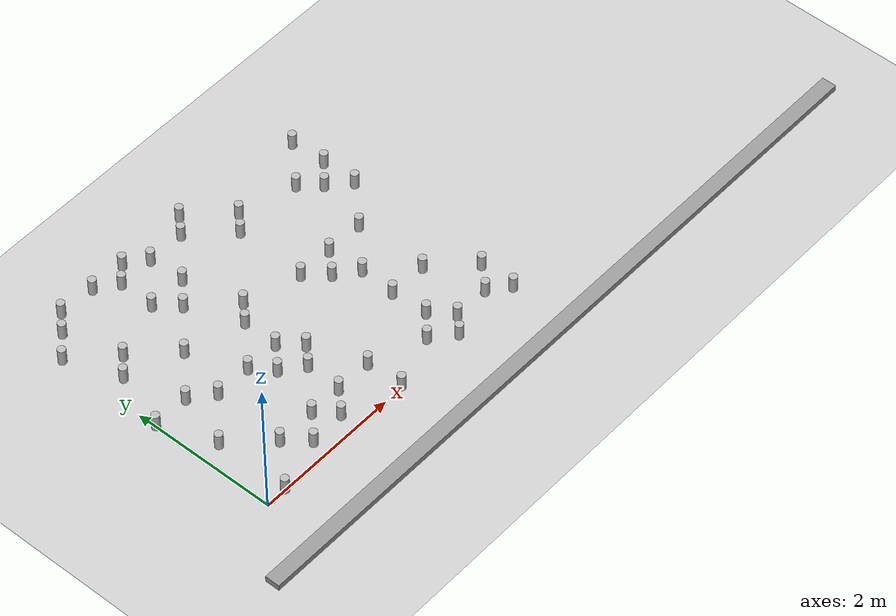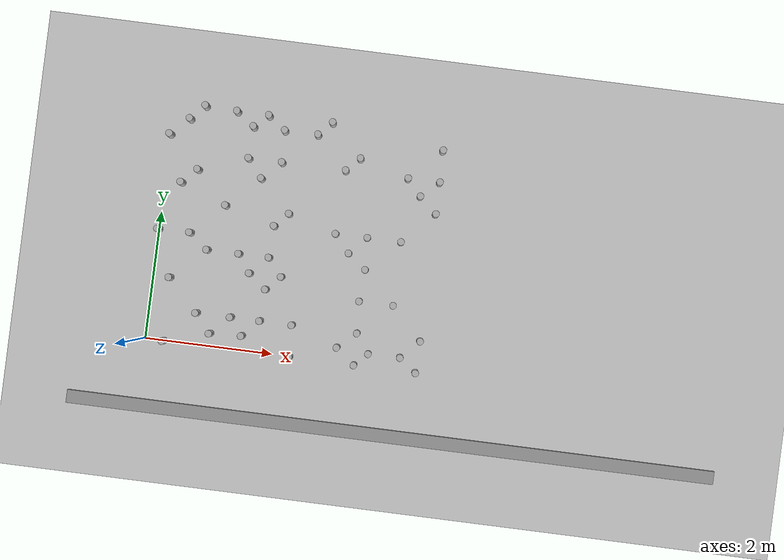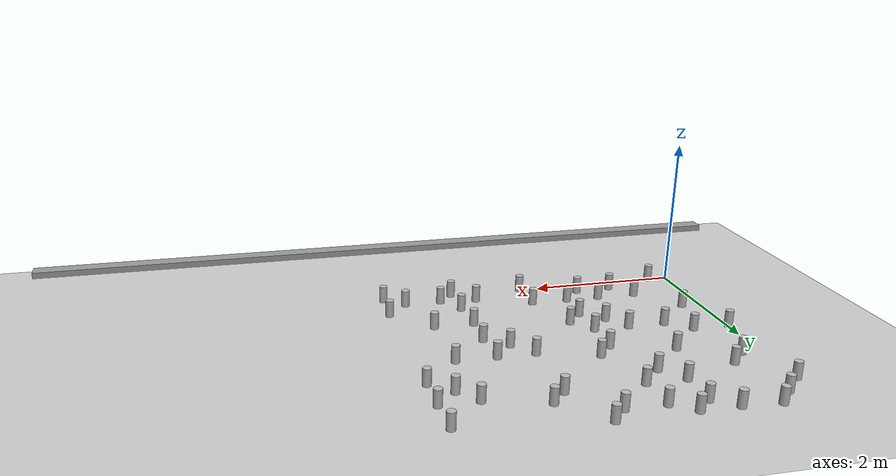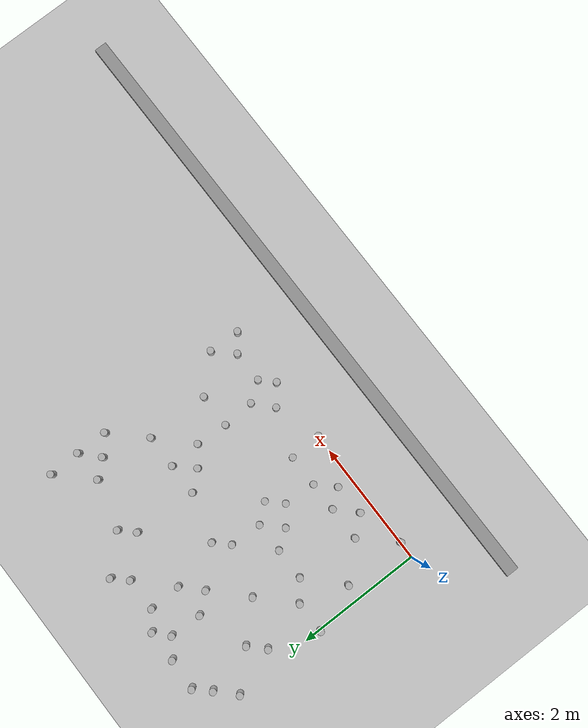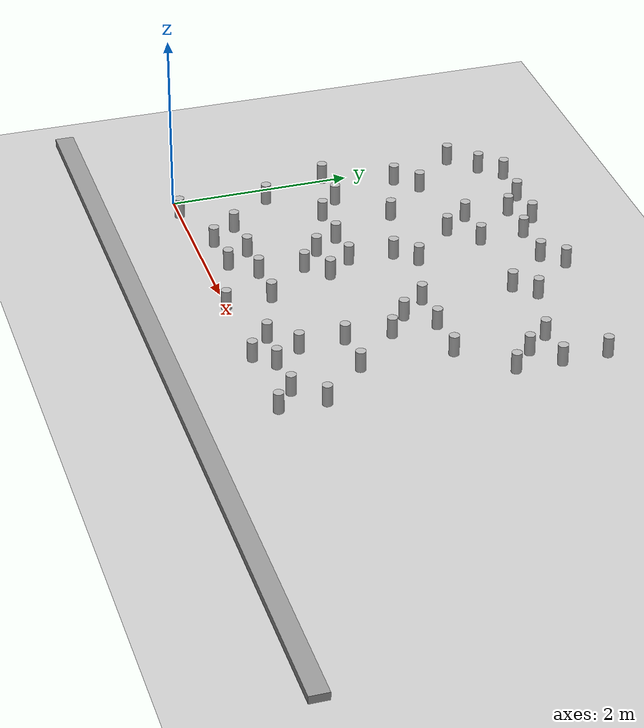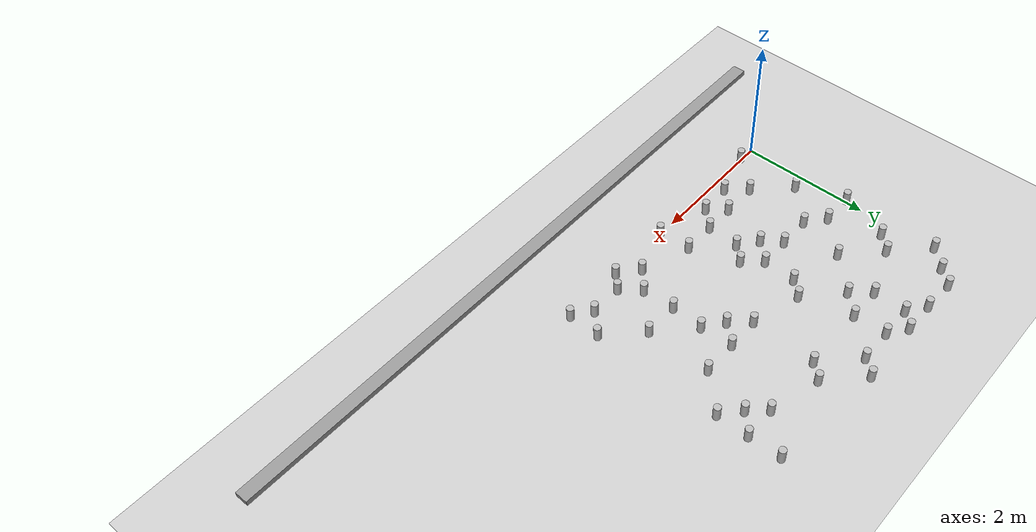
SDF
<sdf version="1.6">
 <world name="default">
  <model name="ground_plane">
   <static>1</static>
   <link name="link">
    <collision name="collision">
     <geometry><plane><normal>0 0 1</normal><size>100 100</size></plane></geometry>
     <surface><friction><ode><mu>100</mu><mu2>50</mu2></ode></friction></surface>
    </collision>
    <visual name="visual">
     <cast_shadows>0</cast_shadows>
     <geometry><plane><normal>0 0 1</normal><size>100 100</size></plane></geometry>
     <material>
      <script><uri>file://media/materials/scripts/gazebo.material</uri><name>Gazebo/Grey</name></script>
     </material>
    </visual>
   </link>
  </model>
  <model name="wall4">
   <static>1</static>
   <link name="link">
    <pose>0 0 0.42 0 -0 0</pose>
    <collision name="collision"><geometry><box><size>10 0.2 0.084</size></box></geometry></collision>
    <visual name="visual">
     <cast_shadows>0</cast_shadows>
     <geometry><box><size>10 0.2 0.084</size></box></geometry>
     <material>
      <script>
       <uri>model://grey_wall/materials/scripts</uri>
       <uri>model://grey_wall/materials/textures</uri>
       <name>vrc/grey_wall</name>
      </script>
     </material>
    </visual>
   </link>
   <pose>4.0 -1 0 0 -0 0</pose>
  </model>
  <model name="can3.258957673971.0">
   <link name="link">
    <pose>0 0 0.115 0 -0 0</pose>
    <inertial>
     <mass>0.39</mass>
     <inertia><ixx>0.00058</ixx><ixy>0</ixy><ixz>0</ixz><iyy>0.00058</iyy><iyz>0</iyz><izz>0.00019</izz></inertia>
    </inertial>
    <collision name="collision">
     <geometry><cylinder><radius>0.055</radius><length>0.23</length></cylinder></geometry>
    </collision>
    <visual name="visual">
     <geometry><cylinder><radius>0.055</radius><length>0.23</length></cylinder></geometry>
     <material>
      <script>
       <uri>model://beer/materials/scripts</uri>
       <uri>model://beer/materials/textures</uri>
       <name>Beer/Diffuse</name>
      </script>
     </material>
    </visual>
   </link>
   <pose>3.25895767397 1.0 -2e-06 1e-06 0 -9.5e-05</pose>
  </model>
  <model name="can1.782080667241.0">
   <link name="link">
    <pose>0 0 0.115 0 -0 0</pose>
    <inertial>
     <mass>0.39</mass>
     <inertia><ixx>0.00058</ixx><ixy>0</ixy><ixz>0</ixz><iyy>0.00058</iyy><iyz>0</iyz><izz>0.00019</izz></inertia>
    </inertial>
    <collision name="collision">
     <geometry><cylinder><radius>0.055</radius><length>0.23</length></cylinder></geometry>
    </collision>
    <visual name="visual">
     <geometry><cylinder><radius>0.055</radius><length>0.23</length></cylinder></geometry>
     <material>
      <script>
       <uri>model://beer/materials/scripts</uri>
       <uri>model://beer/materials/textures</uri>
       <name>Beer/Diffuse</name>
      </script>
     </material>
    </visual>
   </link>
   <pose>1.78208066724 1.0 -2e-06 1e-06 0 -9.5e-05</pose>
  </model>
  <model name="can1.00.207146952871">
   <link name="link">
    <pose>0 0 0.115 0 -0 0</pose>
    <inertial>
     <mass>0.39</mass>
     <inertia><ixx>0.00058</ixx><ixy>0</ixy><ixz>0</ixz><iyy>0.00058</iyy><iyz>0</iyz><izz>0.00019</izz></inertia>
    </inertial>
    <collision name="collision">
     <geometry><cylinder><radius>0.055</radius><length>0.23</length></cylinder></geometry>
    </collision>
    <visual name="visual">
     <geometry><cylinder><radius>0.055</radius><length>0.23</length></cylinder></geometry>
     <material>
      <script>
       <uri>model://beer/materials/scripts</uri>
       <uri>model://beer/materials/textures</uri>
       <name>Beer/Diffuse</name>
      </script>
     </material>
    </visual>
   </link>
   <pose>1.0 0.207146952871 -2e-06 1e-06 0 -9.5e-05</pose>
  </model>
  <model name="can1.03.7041113807">
   <link name="link">
    <pose>0 0 0.115 0 -0 0</pose>
    <inertial>
     <mass>0.39</mass>
     <inertia><ixx>0.00058</ixx><ixy>0</ixy><ixz>0</ixz><iyy>0.00058</iyy><iyz>0</iyz><izz>0.00019</izz></inertia>
    </inertial>
    <collision name="collision">
     <geometry><cylinder><radius>0.055</radius><length>0.23</length></cylinder></geometry>
    </collision>
    <visual name="visual">
     <geometry><cylinder><radius>0.055</radius><length>0.23</length></cylinder></geometry>
     <material>
      <script>
       <uri>model://beer/materials/scripts</uri>
       <uri>model://beer/materials/textures</uri>
       <name>Beer/Diffuse</name>
      </script>
     </material>
    </visual>
   </link>
   <pose>1.0 3.7041113807 -2e-06 1e-06 0 -9.5e-05</pose>
  </model>
  <model name="can1.51.21977305857">
   <link name="link">
    <pose>0 0 0.115 0 -0 0</pose>
    <inertial>
     <mass>0.39</mass>
     <inertia><ixx>0.00058</ixx><ixy>0</ixy><ixz>0</ixz><iyy>0.00058</iyy><iyz>0</iyz><izz>0.00019</izz></inertia>
    </inertial>
    <collision name="collision">
     <geometry><cylinder><radius>0.055</radius><length>0.23</length></cylinder></geometry>
    </collision>
    <visual name="visual">
     <geometry><cylinder><radius>0.055</radius><length>0.23</length></cylinder></geometry>
     <material>
      <script>
       <uri>model://beer/materials/scripts</uri>
       <uri>model://beer/materials/textures</uri>
       <name>Beer/Diffuse</name>
      </script>
     </material>
    </visual>
   </link>
   <pose>1.5 1.21977305857 -2e-06 1e-06 0 -9.5e-05</pose>
  </model>
  <model name="can4.02.74444031951">
   <link name="link">
    <pose>0 0 0.115 0 -0 0</pose>
    <inertial>
     <mass>0.39</mass>
     <inertia><ixx>0.00058</ixx><ixy>0</ixy><ixz>0</ixz><iyy>0.00058</iyy><iyz>0</iyz><izz>0.00019</izz></inertia>
    </inertial>
    <collision name="collision">
     <geometry><cylinder><radius>0.055</radius><length>0.23</length></cylinder></geometry>
    </collision>
    <visual name="visual">
     <geometry><cylinder><radius>0.055</radius><length>0.23</length></cylinder></geometry>
     <material>
      <script>
       <uri>model://beer/materials/scripts</uri>
       <uri>model://beer/materials/textures</uri>
       <name>Beer/Diffuse</name>
      </script>
     </material>
    </visual>
   </link>
   <pose>4.0 2.74444031951 -2e-06 1e-06 0 -9.5e-05</pose>
  </model>
  <model name="can1.772515468821.5">
   <link name="link">
    <pose>0 0 0.115 0 -0 0</pose>
    <inertial>
     <mass>0.39</mass>
     <inertia><ixx>0.00058</ixx><ixy>0</ixy><ixz>0</ixz><iyy>0.00058</iyy><iyz>0</iyz><izz>0.00019</izz></inertia>
    </inertial>
    <collision name="collision">
     <geometry><cylinder><radius>0.055</radius><length>0.23</length></cylinder></geometry>
    </collision>
    <visual name="visual">
     <geometry><cylinder><radius>0.055</radius><length>0.23</length></cylinder></geometry>
     <material>
      <script>
       <uri>model://beer/materials/scripts</uri>
       <uri>model://beer/materials/textures</uri>
       <name>Beer/Diffuse</name>
      </script>
     </material>
    </visual>
   </link>
   <pose>1.77251546882 1.5 -2e-06 1e-06 0 -9.5e-05</pose>
  </model>
  <model name="can4.281534310790.5">
   <link name="link">
    <pose>0 0 0.115 0 -0 0</pose>
    <inertial>
     <mass>0.39</mass>
     <inertia><ixx>0.00058</ixx><ixy>0</ixy><ixz>0</ixz><iyy>0.00058</iyy><iyz>0</iyz><izz>0.00019</izz></inertia>
    </inertial>
    <collision name="collision">
     <geometry><cylinder><radius>0.055</radius><length>0.23</length></cylinder></geometry>
    </collision>
    <visual name="visual">
     <geometry><cylinder><radius>0.055</radius><length>0.23</length></cylinder></geometry>
     <material>
      <script>
       <uri>model://beer/materials/scripts</uri>
       <uri>model://beer/materials/textures</uri>
       <name>Beer/Diffuse</name>
      </script>
     </material>
    </visual>
   </link>
   <pose>4.28153431079 0.5 -2e-06 1e-06 0 -9.5e-05</pose>
  </model>
  <model name="can1.292283602720.5">
   <link name="link">
    <pose>0 0 0.115 0 -0 0</pose>
    <inertial>
     <mass>0.39</mass>
     <inertia><ixx>0.00058</ixx><ixy>0</ixy><ixz>0</ixz><iyy>0.00058</iyy><iyz>0</iyz><izz>0.00019</izz></inertia>
    </inertial>
    <collision name="collision">
     <geometry><cylinder><radius>0.055</radius><length>0.23</length></cylinder></geometry>
    </collision>
    <visual name="visual">
     <geometry><cylinder><radius>0.055</radius><length>0.23</length></cylinder></geometry>
     <material>
      <script>
       <uri>model://beer/materials/scripts</uri>
       <uri>model://beer/materials/textures</uri>
       <name>Beer/Diffuse</name>
      </script>
     </material>
    </visual>
   </link>
   <pose>1.29228360272 0.5 -2e-06 1e-06 0 -9.5e-05</pose>
  </model>
  <model name="can4.267930622410.0">
   <link name="link">
    <pose>0 0 0.115 0 -0 0</pose>
    <inertial>
     <mass>0.39</mass>
     <inertia><ixx>0.00058</ixx><ixy>0</ixy><ixz>0</ixz><iyy>0.00058</iyy><iyz>0</iyz><izz>0.00019</izz></inertia>
    </inertial>
    <collision name="collision">
     <geometry><cylinder><radius>0.055</radius><length>0.23</length></cylinder></geometry>
    </collision>
    <visual name="visual">
     <geometry><cylinder><radius>0.055</radius><length>0.23</length></cylinder></geometry>
     <material>
      <script>
       <uri>model://beer/materials/scripts</uri>
       <uri>model://beer/materials/textures</uri>
       <name>Beer/Diffuse</name>
      </script>
     </material>
    </visual>
   </link>
   <pose>4.26793062241 0.0 -2e-06 1e-06 0 -9.5e-05</pose>
  </model>
  <model name="can0.270246613111.0">
   <link name="link">
    <pose>0 0 0.115 0 -0 0</pose>
    <inertial>
     <mass>0.39</mass>
     <inertia><ixx>0.00058</ixx><ixy>0</ixy><ixz>0</ixz><iyy>0.00058</iyy><iyz>0</iyz><izz>0.00019</izz></inertia>
    </inertial>
    <collision name="collision">
     <geometry><cylinder><radius>0.055</radius><length>0.23</length></cylinder></geometry>
    </collision>
    <visual name="visual">
     <geometry><cylinder><radius>0.055</radius><length>0.23</length></cylinder></geometry>
     <material>
      <script>
       <uri>model://beer/materials/scripts</uri>
       <uri>model://beer/materials/textures</uri>
       <name>Beer/Diffuse</name>
      </script>
     </material>
    </visual>
   </link>
   <pose>0.27024661311 1.0 -2e-06 1e-06 0 -9.5e-05</pose>
  </model>
  <model name="can3.789780478522.0">
   <link name="link">
    <pose>0 0 0.115 0 -0 0</pose>
    <inertial>
     <mass>0.39</mass>
     <inertia><ixx>0.00058</ixx><ixy>0</ixy><ixz>0</ixz><iyy>0.00058</iyy><iyz>0</iyz><izz>0.00019</izz></inertia>
    </inertial>
    <collision name="collision">
     <geometry><cylinder><radius>0.055</radius><length>0.23</length></cylinder></geometry>
    </collision>
    <visual name="visual">
     <geometry><cylinder><radius>0.055</radius><length>0.23</length></cylinder></geometry>
     <material>
      <script>
       <uri>model://beer/materials/scripts</uri>
       <uri>model://beer/materials/textures</uri>
       <name>Beer/Diffuse</name>
      </script>
     </material>
    </visual>
   </link>
   <pose>3.78978047852 2.0 -2e-06 1e-06 0 -9.5e-05</pose>
  </model>
  <model name="can3.50.201019531906">
   <link name="link">
    <pose>0 0 0.115 0 -0 0</pose>
    <inertial>
     <mass>0.39</mass>
     <inertia><ixx>0.00058</ixx><ixy>0</ixy><ixz>0</ixz><iyy>0.00058</iyy><iyz>0</iyz><izz>0.00019</izz></inertia>
    </inertial>
    <collision name="collision">
     <geometry><cylinder><radius>0.055</radius><length>0.23</length></cylinder></geometry>
    </collision>
    <visual name="visual">
     <geometry><cylinder><radius>0.055</radius><length>0.23</length></cylinder></geometry>
     <material>
      <script>
       <uri>model://beer/materials/scripts</uri>
       <uri>model://beer/materials/textures</uri>
       <name>Beer/Diffuse</name>
      </script>
     </material>
    </visual>
   </link>
   <pose>3.5 0.201019531906 -2e-06 1e-06 0 -9.5e-05</pose>
  </model>
  <model name="can4.273143605972.5">
   <link name="link">
    <pose>0 0 0.115 0 -0 0</pose>
    <inertial>
     <mass>0.39</mass>
     <inertia><ixx>0.00058</ixx><ixy>0</ixy><ixz>0</ixz><iyy>0.00058</iyy><iyz>0</iyz><izz>0.00019</izz></inertia>
    </inertial>
    <collision name="collision">
     <geometry><cylinder><radius>0.055</radius><length>0.23</length></cylinder></geometry>
    </collision>
    <visual name="visual">
     <geometry><cylinder><radius>0.055</radius><length>0.23</length></cylinder></geometry>
     <material>
      <script>
       <uri>model://beer/materials/scripts</uri>
       <uri>model://beer/materials/textures</uri>
       <name>Beer/Diffuse</name>
      </script>
     </material>
    </visual>
   </link>
   <pose>4.27314360597 2.5 -2e-06 1e-06 0 -9.5e-05</pose>
  </model>
  <model name="can2.759607361732.0">
   <link name="link">
    <pose>0 0 0.115 0 -0 0</pose>
    <inertial>
     <mass>0.39</mass>
     <inertia><ixx>0.00058</ixx><ixy>0</ixy><ixz>0</ixz><iyy>0.00058</iyy><iyz>0</iyz><izz>0.00019</izz></inertia>
    </inertial>
    <collision name="collision">
     <geometry><cylinder><radius>0.055</radius><length>0.23</length></cylinder></geometry>
    </collision>
    <visual name="visual">
     <geometry><cylinder><radius>0.055</radius><length>0.23</length></cylinder></geometry>
     <material>
      <script>
       <uri>model://beer/materials/scripts</uri>
       <uri>model://beer/materials/textures</uri>
       <name>Beer/Diffuse</name>
      </script>
     </material>
    </visual>
   </link>
   <pose>2.75960736173 2.0 -2e-06 1e-06 0 -9.5e-05</pose>
  </model>
  <model name="can0.01.73219008791">
   <link name="link">
    <pose>0 0 0.115 0 -0 0</pose>
    <inertial>
     <mass>0.39</mass>
     <inertia><ixx>0.00058</ixx><ixy>0</ixy><ixz>0</ixz><iyy>0.00058</iyy><iyz>0</iyz><izz>0.00019</izz></inertia>
    </inertial>
    <collision name="collision">
     <geometry><cylinder><radius>0.055</radius><length>0.23</length></cylinder></geometry>
    </collision>
    <visual name="visual">
     <geometry><cylinder><radius>0.055</radius><length>0.23</length></cylinder></geometry>
     <material>
      <script>
       <uri>model://beer/materials/scripts</uri>
       <uri>model://beer/materials/textures</uri>
       <name>Beer/Diffuse</name>
      </script>
     </material>
    </visual>
   </link>
   <pose>0.0 1.73219008791 -2e-06 1e-06 0 -9.5e-05</pose>
  </model>
  <model name="can1.50.233039923932">
   <link name="link">
    <pose>0 0 0.115 0 -0 0</pose>
    <inertial>
     <mass>0.39</mass>
     <inertia><ixx>0.00058</ixx><ixy>0</ixy><ixz>0</ixz><iyy>0.00058</iyy><iyz>0</iyz><izz>0.00019</izz></inertia>
    </inertial>
    <collision name="collision">
     <geometry><cylinder><radius>0.055</radius><length>0.23</length></cylinder></geometry>
    </collision>
    <visual name="visual">
     <geometry><cylinder><radius>0.055</radius><length>0.23</length></cylinder></geometry>
     <material>
      <script>
       <uri>model://beer/materials/scripts</uri>
       <uri>model://beer/materials/textures</uri>
       <name>Beer/Diffuse</name>
      </script>
     </material>
    </visual>
   </link>
   <pose>1.5 0.233039923932 -2e-06 1e-06 0 -9.5e-05</pose>
  </model>
  <model name="can0.7529922105180.5">
   <link name="link">
    <pose>0 0 0.115 0 -0 0</pose>
    <inertial>
     <mass>0.39</mass>
     <inertia><ixx>0.00058</ixx><ixy>0</ixy><ixz>0</ixz><iyy>0.00058</iyy><iyz>0</iyz><izz>0.00019</izz></inertia>
    </inertial>
    <collision name="collision">
     <geometry><cylinder><radius>0.055</radius><length>0.23</length></cylinder></geometry>
    </collision>
    <visual name="visual">
     <geometry><cylinder><radius>0.055</radius><length>0.23</length></cylinder></geometry>
     <material>
      <script>
       <uri>model://beer/materials/scripts</uri>
       <uri>model://beer/materials/textures</uri>
       <name>Beer/Diffuse</name>
      </script>
     </material>
    </visual>
   </link>
   <pose>0.752992210518 0.5 -2e-06 1e-06 0 -9.5e-05</pose>
  </model>
  <model name="can1.29924636361.5">
   <link name="link">
    <pose>0 0 0.115 0 -0 0</pose>
    <inertial>
     <mass>0.39</mass>
     <inertia><ixx>0.00058</ixx><ixy>0</ixy><ixz>0</ixz><iyy>0.00058</iyy><iyz>0</iyz><izz>0.00019</izz></inertia>
    </inertial>
    <collision name="collision">
     <geometry><cylinder><radius>0.055</radius><length>0.23</length></cylinder></geometry>
    </collision>
    <visual name="visual">
     <geometry><cylinder><radius>0.055</radius><length>0.23</length></cylinder></geometry>
     <material>
      <script>
       <uri>model://beer/materials/scripts</uri>
       <uri>model://beer/materials/textures</uri>
       <name>Beer/Diffuse</name>
      </script>
     </material>
    </visual>
   </link>
   <pose>1.2992463636 1.5 -2e-06 1e-06 0 -9.5e-05</pose>
  </model>
  <model name="can4.262147768273.5">
   <link name="link">
    <pose>0 0 0.115 0 -0 0</pose>
    <inertial>
     <mass>0.39</mass>
     <inertia><ixx>0.00058</ixx><ixy>0</ixy><ixz>0</ixz><iyy>0.00058</iyy><iyz>0</iyz><izz>0.00019</izz></inertia>
    </inertial>
    <collision name="collision">
     <geometry><cylinder><radius>0.055</radius><length>0.23</length></cylinder></geometry>
    </collision>
    <visual name="visual">
     <geometry><cylinder><radius>0.055</radius><length>0.23</length></cylinder></geometry>
     <material>
      <script>
       <uri>model://beer/materials/scripts</uri>
       <uri>model://beer/materials/textures</uri>
       <name>Beer/Diffuse</name>
      </script>
     </material>
    </visual>
   </link>
   <pose>4.26214776827 3.5 -2e-06 1e-06 0 -9.5e-05</pose>
  </model>
  <model name="can2.793460252693.0">
   <link name="link">
    <pose>0 0 0.115 0 -0 0</pose>
    <inertial>
     <mass>0.39</mass>
     <inertia><ixx>0.00058</ixx><ixy>0</ixy><ixz>0</ixz><iyy>0.00058</iyy><iyz>0</iyz><izz>0.00019</izz></inertia>
    </inertial>
    <collision name="collision">
     <geometry><cylinder><radius>0.055</radius><length>0.23</length></cylinder></geometry>
    </collision>
    <visual name="visual">
     <geometry><cylinder><radius>0.055</radius><length>0.23</length></cylinder></geometry>
     <material>
      <script>
       <uri>model://beer/materials/scripts</uri>
       <uri>model://beer/materials/textures</uri>
       <name>Beer/Diffuse</name>
      </script>
     </material>
    </visual>
   </link>
   <pose>2.79346025269 3.0 -2e-06 1e-06 0 -9.5e-05</pose>
  </model>
  <model name="can2.53.71712301751">
   <link name="link">
    <pose>0 0 0.115 0 -0 0</pose>
    <inertial>
     <mass>0.39</mass>
     <inertia><ixx>0.00058</ixx><ixy>0</ixy><ixz>0</ixz><iyy>0.00058</iyy><iyz>0</iyz><izz>0.00019</izz></inertia>
    </inertial>
    <collision name="collision">
     <geometry><cylinder><radius>0.055</radius><length>0.23</length></cylinder></geometry>
    </collision>
    <visual name="visual">
     <geometry><cylinder><radius>0.055</radius><length>0.23</length></cylinder></geometry>
     <material>
      <script>
       <uri>model://beer/materials/scripts</uri>
       <uri>model://beer/materials/textures</uri>
       <name>Beer/Diffuse</name>
      </script>
     </material>
    </visual>
   </link>
   <pose>2.5 3.71712301751 -2e-06 1e-06 0 -9.5e-05</pose>
  </model>
  <model name="can0.2902764286470.0">
   <link name="link">
    <pose>0 0 0.115 0 -0 0</pose>
    <inertial>
     <mass>0.39</mass>
     <inertia><ixx>0.00058</ixx><ixy>0</ixy><ixz>0</ixz><iyy>0.00058</iyy><iyz>0</iyz><izz>0.00019</izz></inertia>
    </inertial>
    <collision name="collision">
     <geometry><cylinder><radius>0.055</radius><length>0.23</length></cylinder></geometry>
    </collision>
    <visual name="visual">
     <geometry><cylinder><radius>0.055</radius><length>0.23</length></cylinder></geometry>
     <material>
      <script>
       <uri>model://beer/materials/scripts</uri>
       <uri>model://beer/materials/textures</uri>
       <name>Beer/Diffuse</name>
      </script>
     </material>
    </visual>
   </link>
   <pose>0.290276428647 0.0 -2e-06 1e-06 0 -9.5e-05</pose>
  </model>
  <model name="can1.53.70127860515">
   <link name="link">
    <pose>0 0 0.115 0 -0 0</pose>
    <inertial>
     <mass>0.39</mass>
     <inertia><ixx>0.00058</ixx><ixy>0</ixy><ixz>0</ixz><iyy>0.00058</iyy><iyz>0</iyz><izz>0.00019</izz></inertia>
    </inertial>
    <collision name="collision">
     <geometry><cylinder><radius>0.055</radius><length>0.23</length></cylinder></geometry>
    </collision>
    <visual name="visual">
     <geometry><cylinder><radius>0.055</radius><length>0.23</length></cylinder></geometry>
     <material>
      <script>
       <uri>model://beer/materials/scripts</uri>
       <uri>model://beer/materials/textures</uri>
       <name>Beer/Diffuse</name>
      </script>
     </material>
    </visual>
   </link>
   <pose>1.5 3.70127860515 -2e-06 1e-06 0 -9.5e-05</pose>
  </model>
  <model name="can3.776244974113.0">
   <link name="link">
    <pose>0 0 0.115 0 -0 0</pose>
    <inertial>
     <mass>0.39</mass>
     <inertia><ixx>0.00058</ixx><ixy>0</ixy><ixz>0</ixz><iyy>0.00058</iyy><iyz>0</iyz><izz>0.00019</izz></inertia>
    </inertial>
    <collision name="collision">
     <geometry><cylinder><radius>0.055</radius><length>0.23</length></cylinder></geometry>
    </collision>
    <visual name="visual">
     <geometry><cylinder><radius>0.055</radius><length>0.23</length></cylinder></geometry>
     <material>
      <script>
       <uri>model://beer/materials/scripts</uri>
       <uri>model://beer/materials/textures</uri>
       <name>Beer/Diffuse</name>
      </script>
     </material>
    </visual>
   </link>
   <pose>3.77624497411 3.0 -2e-06 1e-06 0 -9.5e-05</pose>
  </model>
  <model name="can0.51.73426169319">
   <link name="link">
    <pose>0 0 0.115 0 -0 0</pose>
    <inertial>
     <mass>0.39</mass>
     <inertia><ixx>0.00058</ixx><ixy>0</ixy><ixz>0</ixz><iyy>0.00058</iyy><iyz>0</iyz><izz>0.00019</izz></inertia>
    </inertial>
    <collision name="collision">
     <geometry><cylinder><radius>0.055</radius><length>0.23</length></cylinder></geometry>
    </collision>
    <visual name="visual">
     <geometry><cylinder><radius>0.055</radius><length>0.23</length></cylinder></geometry>
     <material>
      <script>
       <uri>model://beer/materials/scripts</uri>
       <uri>model://beer/materials/textures</uri>
       <name>Beer/Diffuse</name>
      </script>
     </material>
    </visual>
   </link>
   <pose>0.5 1.73426169319 -2e-06 1e-06 0 -9.5e-05</pose>
  </model>
  <model name="can1.7544308630.5">
   <link name="link">
    <pose>0 0 0.115 0 -0 0</pose>
    <inertial>
     <mass>0.39</mass>
     <inertia><ixx>0.00058</ixx><ixy>0</ixy><ixz>0</ixz><iyy>0.00058</iyy><iyz>0</iyz><izz>0.00019</izz></inertia>
    </inertial>
    <collision name="collision">
     <geometry><cylinder><radius>0.055</radius><length>0.23</length></cylinder></geometry>
    </collision>
    <visual name="visual">
     <geometry><cylinder><radius>0.055</radius><length>0.23</length></cylinder></geometry>
     <material>
      <script>
       <uri>model://beer/materials/scripts</uri>
       <uri>model://beer/materials/textures</uri>
       <name>Beer/Diffuse</name>
      </script>
     </material>
    </visual>
   </link>
   <pose>1.754430863 0.5 -2e-06 1e-06 0 -9.5e-05</pose>
  </model>
  <model name="can0.7966664600421.5">
   <link name="link">
    <pose>0 0 0.115 0 -0 0</pose>
    <inertial>
     <mass>0.39</mass>
     <inertia><ixx>0.00058</ixx><ixy>0</ixy><ixz>0</ixz><iyy>0.00058</iyy><iyz>0</iyz><izz>0.00019</izz></inertia>
    </inertial>
    <collision name="collision">
     <geometry><cylinder><radius>0.055</radius><length>0.23</length></cylinder></geometry>
    </collision>
    <visual name="visual">
     <geometry><cylinder><radius>0.055</radius><length>0.23</length></cylinder></geometry>
     <material>
      <script>
       <uri>model://beer/materials/scripts</uri>
       <uri>model://beer/materials/textures</uri>
       <name>Beer/Diffuse</name>
      </script>
     </material>
    </visual>
   </link>
   <pose>0.796666460042 1.5 -2e-06 1e-06 0 -9.5e-05</pose>
  </model>
  <model name="can2.295567354933.5">
   <link name="link">
    <pose>0 0 0.115 0 -0 0</pose>
    <inertial>
     <mass>0.39</mass>
     <inertia><ixx>0.00058</ixx><ixy>0</ixy><ixz>0</ixz><iyy>0.00058</iyy><iyz>0</iyz><izz>0.00019</izz></inertia>
    </inertial>
    <collision name="collision">
     <geometry><cylinder><radius>0.055</radius><length>0.23</length></cylinder></geometry>
    </collision>
    <visual name="visual">
     <geometry><cylinder><radius>0.055</radius><length>0.23</length></cylinder></geometry>
     <material>
      <script>
       <uri>model://beer/materials/scripts</uri>
       <uri>model://beer/materials/textures</uri>
       <name>Beer/Diffuse</name>
      </script>
     </material>
    </visual>
   </link>
   <pose>2.29556735493 3.5 -2e-06 1e-06 0 -9.5e-05</pose>
  </model>
  <model name="can0.53.72797019638">
   <link name="link">
    <pose>0 0 0.115 0 -0 0</pose>
    <inertial>
     <mass>0.39</mass>
     <inertia><ixx>0.00058</ixx><ixy>0</ixy><ixz>0</ixz><iyy>0.00058</iyy><iyz>0</iyz><izz>0.00019</izz></inertia>
    </inertial>
    <collision name="collision">
     <geometry><cylinder><radius>0.055</radius><length>0.23</length></cylinder></geometry>
    </collision>
    <visual name="visual">
     <geometry><cylinder><radius>0.055</radius><length>0.23</length></cylinder></geometry>
     <material>
      <script>
       <uri>model://beer/materials/scripts</uri>
       <uri>model://beer/materials/textures</uri>
       <name>Beer/Diffuse</name>
      </script>
     </material>
    </visual>
   </link>
   <pose>0.5 3.72797019638 -2e-06 1e-06 0 -9.5e-05</pose>
  </model>
  <model name="can1.267279972443.0">
   <link name="link">
    <pose>0 0 0.115 0 -0 0</pose>
    <inertial>
     <mass>0.39</mass>
     <inertia><ixx>0.00058</ixx><ixy>0</ixy><ixz>0</ixz><iyy>0.00058</iyy><iyz>0</iyz><izz>0.00019</izz></inertia>
    </inertial>
    <collision name="collision">
     <geometry><cylinder><radius>0.055</radius><length>0.23</length></cylinder></geometry>
    </collision>
    <visual name="visual">
     <geometry><cylinder><radius>0.055</radius><length>0.23</length></cylinder></geometry>
     <material>
      <script>
       <uri>model://beer/materials/scripts</uri>
       <uri>model://beer/materials/textures</uri>
       <name>Beer/Diffuse</name>
      </script>
     </material>
    </visual>
   </link>
   <pose>1.26727997244 3.0 -2e-06 1e-06 0 -9.5e-05</pose>
  </model>
  <model name="can3.287812832851.5">
   <link name="link">
    <pose>0 0 0.115 0 -0 0</pose>
    <inertial>
     <mass>0.39</mass>
     <inertia><ixx>0.00058</ixx><ixy>0</ixy><ixz>0</ixz><iyy>0.00058</iyy><iyz>0</iyz><izz>0.00019</izz></inertia>
    </inertial>
    <collision name="collision">
     <geometry><cylinder><radius>0.055</radius><length>0.23</length></cylinder></geometry>
    </collision>
    <visual name="visual">
     <geometry><cylinder><radius>0.055</radius><length>0.23</length></cylinder></geometry>
     <material>
      <script>
       <uri>model://beer/materials/scripts</uri>
       <uri>model://beer/materials/textures</uri>
       <name>Beer/Diffuse</name>
      </script>
     </material>
    </visual>
   </link>
   <pose>3.28781283285 1.5 -2e-06 1e-06 0 -9.5e-05</pose>
  </model>
  <model name="can0.2831866639393.5">
   <link name="link">
    <pose>0 0 0.115 0 -0 0</pose>
    <inertial>
     <mass>0.39</mass>
     <inertia><ixx>0.00058</ixx><ixy>0</ixy><ixz>0</ixz><iyy>0.00058</iyy><iyz>0</iyz><izz>0.00019</izz></inertia>
    </inertial>
    <collision name="collision">
     <geometry><cylinder><radius>0.055</radius><length>0.23</length></cylinder></geometry>
    </collision>
    <visual name="visual">
     <geometry><cylinder><radius>0.055</radius><length>0.23</length></cylinder></geometry>
     <material>
      <script>
       <uri>model://beer/materials/scripts</uri>
       <uri>model://beer/materials/textures</uri>
       <name>Beer/Diffuse</name>
      </script>
     </material>
    </visual>
   </link>
   <pose>0.283186663939 3.5 -2e-06 1e-06 0 -9.5e-05</pose>
  </model>
  <model name="can2.01.22500560281">
   <link name="link">
    <pose>0 0 0.115 0 -0 0</pose>
    <inertial>
     <mass>0.39</mass>
     <inertia><ixx>0.00058</ixx><ixy>0</ixy><ixz>0</ixz><iyy>0.00058</iyy><iyz>0</iyz><izz>0.00019</izz></inertia>
    </inertial>
    <collision name="collision">
     <geometry><cylinder><radius>0.055</radius><length>0.23</length></cylinder></geometry>
    </collision>
    <visual name="visual">
     <geometry><cylinder><radius>0.055</radius><length>0.23</length></cylinder></geometry>
     <material>
      <script>
       <uri>model://beer/materials/scripts</uri>
       <uri>model://beer/materials/textures</uri>
       <name>Beer/Diffuse</name>
      </script>
     </material>
    </visual>
   </link>
   <pose>2.0 1.22500560281 -2e-06 1e-06 0 -9.5e-05</pose>
  </model>
  <model name="can3.01.72184350631">
   <link name="link">
    <pose>0 0 0.115 0 -0 0</pose>
    <inertial>
     <mass>0.39</mass>
     <inertia><ixx>0.00058</ixx><ixy>0</ixy><ixz>0</ixz><iyy>0.00058</iyy><iyz>0</iyz><izz>0.00019</izz></inertia>
    </inertial>
    <collision name="collision">
     <geometry><cylinder><radius>0.055</radius><length>0.23</length></cylinder></geometry>
    </collision>
    <visual name="visual">
     <geometry><cylinder><radius>0.055</radius><length>0.23</length></cylinder></geometry>
     <material>
      <script>
       <uri>model://beer/materials/scripts</uri>
       <uri>model://beer/materials/textures</uri>
       <name>Beer/Diffuse</name>
      </script>
     </material>
    </visual>
   </link>
   <pose>3.0 1.72184350631 -2e-06 1e-06 0 -9.5e-05</pose>
  </model>
  <model name="can3.298223974310.0">
   <link name="link">
    <pose>0 0 0.115 0 -0 0</pose>
    <inertial>
     <mass>0.39</mass>
     <inertia><ixx>0.00058</ixx><ixy>0</ixy><ixz>0</ixz><iyy>0.00058</iyy><iyz>0</iyz><izz>0.00019</izz></inertia>
    </inertial>
    <collision name="collision">
     <geometry><cylinder><radius>0.055</radius><length>0.23</length></cylinder></geometry>
    </collision>
    <visual name="visual">
     <geometry><cylinder><radius>0.055</radius><length>0.23</length></cylinder></geometry>
     <material>
      <script>
       <uri>model://beer/materials/scripts</uri>
       <uri>model://beer/materials/textures</uri>
       <name>Beer/Diffuse</name>
      </script>
     </material>
    </visual>
   </link>
   <pose>3.29822397431 0.0 -2e-06 1e-06 0 -9.5e-05</pose>
  </model>
  <model name="can4.00.206560474743">
   <link name="link">
    <pose>0 0 0.115 0 -0 0</pose>
    <inertial>
     <mass>0.39</mass>
     <inertia><ixx>0.00058</ixx><ixy>0</ixy><ixz>0</ixz><iyy>0.00058</iyy><iyz>0</iyz><izz>0.00019</izz></inertia>
    </inertial>
    <collision name="collision">
     <geometry><cylinder><radius>0.055</radius><length>0.23</length></cylinder></geometry>
    </collision>
    <visual name="visual">
     <geometry><cylinder><radius>0.055</radius><length>0.23</length></cylinder></geometry>
     <material>
      <script>
       <uri>model://beer/materials/scripts</uri>
       <uri>model://beer/materials/textures</uri>
       <name>Beer/Diffuse</name>
      </script>
     </material>
    </visual>
   </link>
   <pose>4.0 0.206560474743 -2e-06 1e-06 0 -9.5e-05</pose>
  </model>
  <model name="can3.285271224620.5">
   <link name="link">
    <pose>0 0 0.115 0 -0 0</pose>
    <inertial>
     <mass>0.39</mass>
     <inertia><ixx>0.00058</ixx><ixy>0</ixy><ixz>0</ixz><iyy>0.00058</iyy><iyz>0</iyz><izz>0.00019</izz></inertia>
    </inertial>
    <collision name="collision">
     <geometry><cylinder><radius>0.055</radius><length>0.23</length></cylinder></geometry>
    </collision>
    <visual name="visual">
     <geometry><cylinder><radius>0.055</radius><length>0.23</length></cylinder></geometry>
     <material>
      <script>
       <uri>model://beer/materials/scripts</uri>
       <uri>model://beer/materials/textures</uri>
       <name>Beer/Diffuse</name>
      </script>
     </material>
    </visual>
   </link>
   <pose>3.28527122462 0.5 -2e-06 1e-06 0 -9.5e-05</pose>
  </model>
  <model name="can2.02.21829464362">
   <link name="link">
    <pose>0 0 0.115 0 -0 0</pose>
    <inertial>
     <mass>0.39</mass>
     <inertia><ixx>0.00058</ixx><ixy>0</ixy><ixz>0</ixz><iyy>0.00058</iyy><iyz>0</iyz><izz>0.00019</izz></inertia>
    </inertial>
    <collision name="collision">
     <geometry><cylinder><radius>0.055</radius><length>0.23</length></cylinder></geometry>
    </collision>
    <visual name="visual">
     <geometry><cylinder><radius>0.055</radius><length>0.23</length></cylinder></geometry>
     <material>
      <script>
       <uri>model://beer/materials/scripts</uri>
       <uri>model://beer/materials/textures</uri>
       <name>Beer/Diffuse</name>
      </script>
     </material>
    </visual>
   </link>
   <pose>2.0 2.21829464362 -2e-06 1e-06 0 -9.5e-05</pose>
  </model>
  <model name="can1.790914757783.0">
   <link name="link">
    <pose>0 0 0.115 0 -0 0</pose>
    <inertial>
     <mass>0.39</mass>
     <inertia><ixx>0.00058</ixx><ixy>0</ixy><ixz>0</ixz><iyy>0.00058</iyy><iyz>0</iyz><izz>0.00019</izz></inertia>
    </inertial>
    <collision name="collision">
     <geometry><cylinder><radius>0.055</radius><length>0.23</length></cylinder></geometry>
    </collision>
    <visual name="visual">
     <geometry><cylinder><radius>0.055</radius><length>0.23</length></cylinder></geometry>
     <material>
      <script>
       <uri>model://beer/materials/scripts</uri>
       <uri>model://beer/materials/textures</uri>
       <name>Beer/Diffuse</name>
      </script>
     </material>
    </visual>
   </link>
   <pose>1.79091475778 3.0 -2e-06 1e-06 0 -9.5e-05</pose>
  </model>
  <model name="can0.266838762642.5">
   <link name="link">
    <pose>0 0 0.115 0 -0 0</pose>
    <inertial>
     <mass>0.39</mass>
     <inertia><ixx>0.00058</ixx><ixy>0</ixy><ixz>0</ixz><iyy>0.00058</iyy><iyz>0</iyz><izz>0.00019</izz></inertia>
    </inertial>
    <collision name="collision">
     <geometry><cylinder><radius>0.055</radius><length>0.23</length></cylinder></geometry>
    </collision>
    <visual name="visual">
     <geometry><cylinder><radius>0.055</radius><length>0.23</length></cylinder></geometry>
     <material>
      <script>
       <uri>model://beer/materials/scripts</uri>
       <uri>model://beer/materials/textures</uri>
       <name>Beer/Diffuse</name>
      </script>
     </material>
    </visual>
   </link>
   <pose>0.26683876264 2.5 -2e-06 1e-06 0 -9.5e-05</pose>
  </model>
  <model name="can3.259516396632.0">
   <link name="link">
    <pose>0 0 0.115 0 -0 0</pose>
    <inertial>
     <mass>0.39</mass>
     <inertia><ixx>0.00058</ixx><ixy>0</ixy><ixz>0</ixz><iyy>0.00058</iyy><iyz>0</iyz><izz>0.00019</izz></inertia>
    </inertial>
    <collision name="collision">
     <geometry><cylinder><radius>0.055</radius><length>0.23</length></cylinder></geometry>
    </collision>
    <visual name="visual">
     <geometry><cylinder><radius>0.055</radius><length>0.23</length></cylinder></geometry>
     <material>
      <script>
       <uri>model://beer/materials/scripts</uri>
       <uri>model://beer/materials/textures</uri>
       <name>Beer/Diffuse</name>
      </script>
     </material>
    </visual>
   </link>
   <pose>3.25951639663 2.0 -2e-06 1e-06 0 -9.5e-05</pose>
  </model>
  <model name="can1.02.22491827566">
   <link name="link">
    <pose>0 0 0.115 0 -0 0</pose>
    <inertial>
     <mass>0.39</mass>
     <inertia><ixx>0.00058</ixx><ixy>0</ixy><ixz>0</ixz><iyy>0.00058</iyy><iyz>0</iyz><izz>0.00019</izz></inertia>
    </inertial>
    <collision name="collision">
     <geometry><cylinder><radius>0.055</radius><length>0.23</length></cylinder></geometry>
    </collision>
    <visual name="visual">
     <geometry><cylinder><radius>0.055</radius><length>0.23</length></cylinder></geometry>
     <material>
      <script>
       <uri>model://beer/materials/scripts</uri>
       <uri>model://beer/materials/textures</uri>
       <name>Beer/Diffuse</name>
      </script>
     </material>
    </visual>
   </link>
   <pose>1.0 2.22491827566 -2e-06 1e-06 0 -9.5e-05</pose>
  </model>
  <model name="can2.259850312180.5">
   <link name="link">
    <pose>0 0 0.115 0 -0 0</pose>
    <inertial>
     <mass>0.39</mass>
     <inertia><ixx>0.00058</ixx><ixy>0</ixy><ixz>0</ixz><iyy>0.00058</iyy><iyz>0</iyz><izz>0.00019</izz></inertia>
    </inertial>
    <collision name="collision">
     <geometry><cylinder><radius>0.055</radius><length>0.23</length></cylinder></geometry>
    </collision>
    <visual name="visual">
     <geometry><cylinder><radius>0.055</radius><length>0.23</length></cylinder></geometry>
     <material>
      <script>
       <uri>model://beer/materials/scripts</uri>
       <uri>model://beer/materials/textures</uri>
       <name>Beer/Diffuse</name>
      </script>
     </material>
    </visual>
   </link>
   <pose>2.25985031218 0.5 -2e-06 1e-06 0 -9.5e-05</pose>
  </model>
  <model name="can3.03.21371364542">
   <link name="link">
    <pose>0 0 0.115 0 -0 0</pose>
    <inertial>
     <mass>0.39</mass>
     <inertia><ixx>0.00058</ixx><ixy>0</ixy><ixz>0</ixz><iyy>0.00058</iyy><iyz>0</iyz><izz>0.00019</izz></inertia>
    </inertial>
    <collision name="collision">
     <geometry><cylinder><radius>0.055</radius><length>0.23</length></cylinder></geometry>
    </collision>
    <visual name="visual">
     <geometry><cylinder><radius>0.055</radius><length>0.23</length></cylinder></geometry>
     <material>
      <script>
       <uri>model://beer/materials/scripts</uri>
       <uri>model://beer/materials/textures</uri>
       <name>Beer/Diffuse</name>
      </script>
     </material>
    </visual>
   </link>
   <pose>3.0 3.21371364542 -2e-06 1e-06 0 -9.5e-05</pose>
  </model>
  <model name="can1.791876210542.0">
   <link name="link">
    <pose>0 0 0.115 0 -0 0</pose>
    <inertial>
     <mass>0.39</mass>
     <inertia><ixx>0.00058</ixx><ixy>0</ixy><ixz>0</ixz><iyy>0.00058</iyy><iyz>0</iyz><izz>0.00019</izz></inertia>
    </inertial>
    <collision name="collision">
     <geometry><cylinder><radius>0.055</radius><length>0.23</length></cylinder></geometry>
    </collision>
    <visual name="visual">
     <geometry><cylinder><radius>0.055</radius><length>0.23</length></cylinder></geometry>
     <material>
      <script>
       <uri>model://beer/materials/scripts</uri>
       <uri>model://beer/materials/textures</uri>
       <name>Beer/Diffuse</name>
      </script>
     </material>
    </visual>
   </link>
   <pose>1.79187621054 2.0 -2e-06 1e-06 0 -9.5e-05</pose>
  </model>
  <model name="can1.282065906983.5">
   <link name="link">
    <pose>0 0 0.115 0 -0 0</pose>
    <inertial>
     <mass>0.39</mass>
     <inertia><ixx>0.00058</ixx><ixy>0</ixy><ixz>0</ixz><iyy>0.00058</iyy><iyz>0</iyz><izz>0.00019</izz></inertia>
    </inertial>
    <collision name="collision">
     <geometry><cylinder><radius>0.055</radius><length>0.23</length></cylinder></geometry>
    </collision>
    <visual name="visual">
     <geometry><cylinder><radius>0.055</radius><length>0.23</length></cylinder></geometry>
     <material>
      <script>
       <uri>model://beer/materials/scripts</uri>
       <uri>model://beer/materials/textures</uri>
       <name>Beer/Diffuse</name>
      </script>
     </material>
    </visual>
   </link>
   <pose>1.28206590698 3.5 -2e-06 1e-06 0 -9.5e-05</pose>
  </model>
  <model name="can0.03.2241719263">
   <link name="link">
    <pose>0 0 0.115 0 -0 0</pose>
    <inertial>
     <mass>0.39</mass>
     <inertia><ixx>0.00058</ixx><ixy>0</ixy><ixz>0</ixz><iyy>0.00058</iyy><iyz>0</iyz><izz>0.00019</izz></inertia>
    </inertial>
    <collision name="collision">
     <geometry><cylinder><radius>0.055</radius><length>0.23</length></cylinder></geometry>
    </collision>
    <visual name="visual">
     <geometry><cylinder><radius>0.055</radius><length>0.23</length></cylinder></geometry>
     <material>
      <script>
       <uri>model://beer/materials/scripts</uri>
       <uri>model://beer/materials/textures</uri>
       <name>Beer/Diffuse</name>
      </script>
     </material>
    </visual>
   </link>
   <pose>0.0 3.2241719263 -2e-06 1e-06 0 -9.5e-05</pose>
  </model>
  <model name="can1.52.71212157853">
   <link name="link">
    <pose>0 0 0.115 0 -0 0</pose>
    <inertial>
     <mass>0.39</mass>
     <inertia><ixx>0.00058</ixx><ixy>0</ixy><ixz>0</ixz><iyy>0.00058</iyy><iyz>0</iyz><izz>0.00019</izz></inertia>
    </inertial>
    <collision name="collision">
     <geometry><cylinder><radius>0.055</radius><length>0.23</length></cylinder></geometry>
    </collision>
    <visual name="visual">
     <geometry><cylinder><radius>0.055</radius><length>0.23</length></cylinder></geometry>
     <material>
      <script>
       <uri>model://beer/materials/scripts</uri>
       <uri>model://beer/materials/textures</uri>
       <name>Beer/Diffuse</name>
      </script>
     </material>
    </visual>
   </link>
   <pose>1.5 2.71212157853 -2e-06 1e-06 0 -9.5e-05</pose>
  </model>
  <model name="can3.00.239898681206">
   <link name="link">
    <pose>0 0 0.115 0 -0 0</pose>
    <inertial>
     <mass>0.39</mass>
     <inertia><ixx>0.00058</ixx><ixy>0</ixy><ixz>0</ixz><iyy>0.00058</iyy><iyz>0</iyz><izz>0.00019</izz></inertia>
    </inertial>
    <collision name="collision">
     <geometry><cylinder><radius>0.055</radius><length>0.23</length></cylinder></geometry>
    </collision>
    <visual name="visual">
     <geometry><cylinder><radius>0.055</radius><length>0.23</length></cylinder></geometry>
     <material>
      <script>
       <uri>model://beer/materials/scripts</uri>
       <uri>model://beer/materials/textures</uri>
       <name>Beer/Diffuse</name>
      </script>
     </material>
    </visual>
   </link>
   <pose>3.0 0.239898681206 -2e-06 1e-06 0 -9.5e-05</pose>
  </model>
  <model name="can2.282447680530.0">
   <link name="link">
    <pose>0 0 0.115 0 -0 0</pose>
    <inertial>
     <mass>0.39</mass>
     <inertia><ixx>0.00058</ixx><ixy>0</ixy><ixz>0</ixz><iyy>0.00058</iyy><iyz>0</iyz><izz>0.00019</izz></inertia>
    </inertial>
    <collision name="collision">
     <geometry><cylinder><radius>0.055</radius><length>0.23</length></cylinder></geometry>
    </collision>
    <visual name="visual">
     <geometry><cylinder><radius>0.055</radius><length>0.23</length></cylinder></geometry>
     <material>
      <script>
       <uri>model://beer/materials/scripts</uri>
       <uri>model://beer/materials/textures</uri>
       <name>Beer/Diffuse</name>
      </script>
     </material>
    </visual>
   </link>
   <pose>2.28244768053 0.0 -2e-06 1e-06 0 -9.5e-05</pose>
  </model>
  <model name="can1.774440763283.5">
   <link name="link">
    <pose>0 0 0.115 0 -0 0</pose>
    <inertial>
     <mass>0.39</mass>
     <inertia><ixx>0.00058</ixx><ixy>0</ixy><ixz>0</ixz><iyy>0.00058</iyy><iyz>0</iyz><izz>0.00019</izz></inertia>
    </inertial>
    <collision name="collision">
     <geometry><cylinder><radius>0.055</radius><length>0.23</length></cylinder></geometry>
    </collision>
    <visual name="visual">
     <geometry><cylinder><radius>0.055</radius><length>0.23</length></cylinder></geometry>
     <material>
      <script>
       <uri>model://beer/materials/scripts</uri>
       <uri>model://beer/materials/textures</uri>
       <name>Beer/Diffuse</name>
      </script>
     </material>
    </visual>
   </link>
   <pose>1.77444076328 3.5 -2e-06 1e-06 0 -9.5e-05</pose>
  </model>
  <model name="can0.52.7275032793">
   <link name="link">
    <pose>0 0 0.115 0 -0 0</pose>
    <inertial>
     <mass>0.39</mass>
     <inertia><ixx>0.00058</ixx><ixy>0</ixy><ixz>0</ixz><iyy>0.00058</iyy><iyz>0</iyz><izz>0.00019</izz></inertia>
    </inertial>
    <collision name="collision">
     <geometry><cylinder><radius>0.055</radius><length>0.23</length></cylinder></geometry>
    </collision>
    <visual name="visual">
     <geometry><cylinder><radius>0.055</radius><length>0.23</length></cylinder></geometry>
     <material>
      <script>
       <uri>model://beer/materials/scripts</uri>
       <uri>model://beer/materials/textures</uri>
       <name>Beer/Diffuse</name>
      </script>
     </material>
    </visual>
   </link>
   <pose>0.5 2.7275032793 -2e-06 1e-06 0 -9.5e-05</pose>
  </model>
  <model name="can3.792197616741.0">
   <link name="link">
    <pose>0 0 0.115 0 -0 0</pose>
    <inertial>
     <mass>0.39</mass>
     <inertia><ixx>0.00058</ixx><ixy>0</ixy><ixz>0</ixz><iyy>0.00058</iyy><iyz>0</iyz><izz>0.00019</izz></inertia>
    </inertial>
    <collision name="collision">
     <geometry><cylinder><radius>0.055</radius><length>0.23</length></cylinder></geometry>
    </collision>
    <visual name="visual">
     <geometry><cylinder><radius>0.055</radius><length>0.23</length></cylinder></geometry>
     <material>
      <script>
       <uri>model://beer/materials/scripts</uri>
       <uri>model://beer/materials/textures</uri>
       <name>Beer/Diffuse</name>
      </script>
     </material>
    </visual>
   </link>
   <pose>3.79219761674 1.0 -2e-06 1e-06 0 -9.5e-05</pose>
  </model>
  <model name="can4.27437409073.0">
   <link name="link">
    <pose>0 0 0.115 0 -0 0</pose>
    <inertial>
     <mass>0.39</mass>
     <inertia><ixx>0.00058</ixx><ixy>0</ixy><ixz>0</ixz><iyy>0.00058</iyy><iyz>0</iyz><izz>0.00019</izz></inertia>
    </inertial>
    <collision name="collision">
     <geometry><cylinder><radius>0.055</radius><length>0.23</length></cylinder></geometry>
    </collision>
    <visual name="visual">
     <geometry><cylinder><radius>0.055</radius><length>0.23</length></cylinder></geometry>
     <material>
      <script>
       <uri>model://beer/materials/scripts</uri>
       <uri>model://beer/materials/textures</uri>
       <name>Beer/Diffuse</name>
      </script>
     </material>
    </visual>
   </link>
   <pose>4.2743740907 3.0 -2e-06 1e-06 0 -9.5e-05</pose>
  </model>
 </world>
</sdf>
